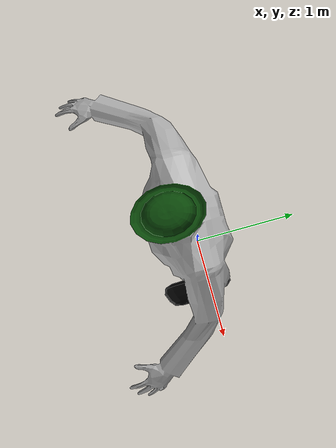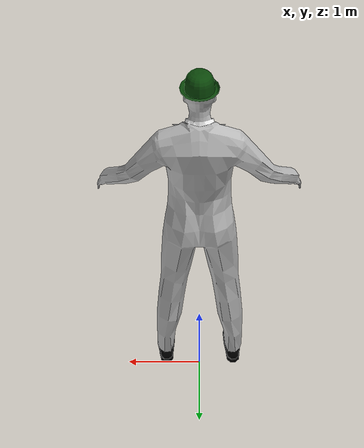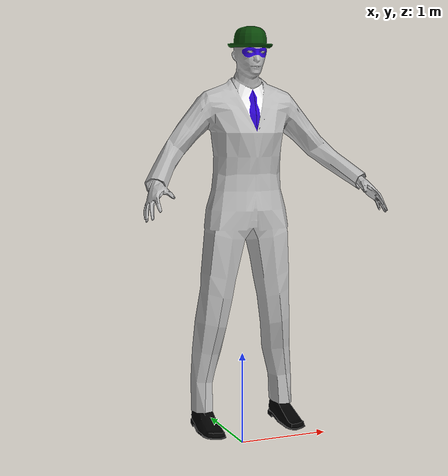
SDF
<?xml version="1.0" ?>
<sdf version="1.5">
  <model name="riddler">
    <link name="link">
      <inertial>
        <pose>0 -0.1 0.95 0 0 0</pose>
        <mass>80.0</mass>
        <inertia>
          <ixx>24.88</ixx>
          <ixy>0</ixy>
          <ixz>0</ixz>
          <iyy>25.73</iyy>
          <iyz>0</iyz>
          <izz>2.48</izz>
        </inertia>
      </inertial>

      <collision name="riddler_floor">
        <pose>0 -0.1 0.01 0 0 0</pose>
        <geometry>
          <box>
            <size>1.5 1.0 0.5</size>
          </box>
        </geometry>
      </collision>

      <collision name="riddler_collision">
        <pose>0 0 0.02 0.04 0 0</pose>
        <geometry>
          <mesh>
            <uri>model://riddler/meshes/riddler.dae</uri>
          </mesh>
        </geometry>
      </collision>

      <visual name="deadpool_visual">
        <pose>0 0 0.2 0.04 0 0</pose>
        <geometry>
          <mesh>
            <uri>model://riddler/meshes/riddler.dae</uri>
          </mesh>
        </geometry>
      </visual>
    </link>
  </model>
</sdf>
